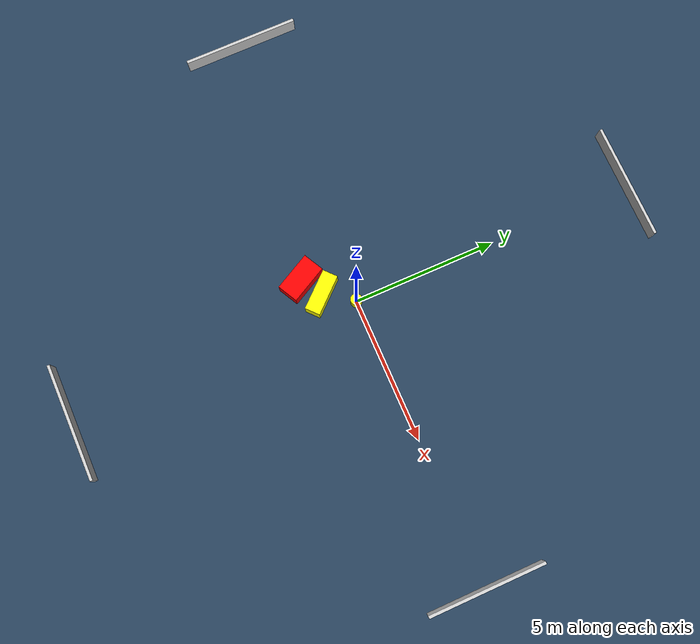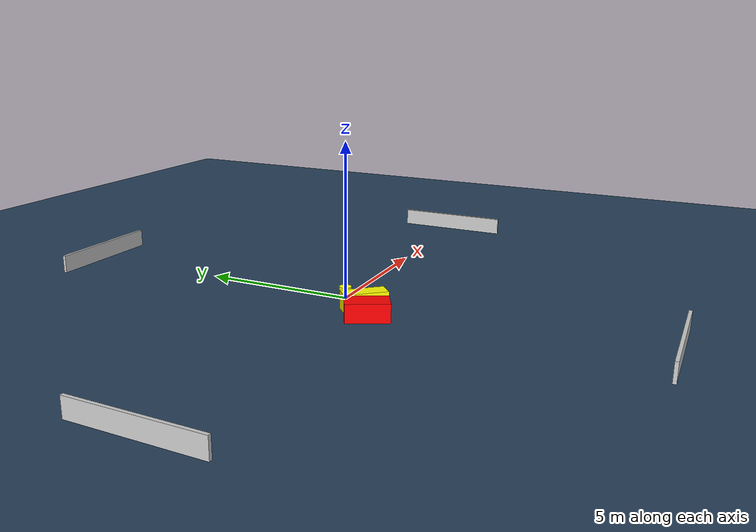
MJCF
<?xml version="1.0" ?>
<mujoco model="generated_environment">
  <option timestep="0.01" integrator="RK4" cone="elliptic"/>
  <default>
    <geom density="1"/>
  </default>
  <asset>
    <texture builtin="gradient" height="3072" name="skybox" rgb1="0.3 0.5 0.7" rgb2="0 0 0" type="skybox" width="512"/>
    <texture builtin="checker" height="300" name="groundplane" rgb1="0.2 0.3 0.4" rgb2="0.1 0.2 0.3" type="2d" width="300"/>
    <material name="groundplane" reflectance="0.2" texrepeat="5 5" texture="groundplane"/>
  </asset>
  <worldbody>
    <light dir="0 0 -1" directional="true" pos="0 0 1.5"/>
    <geom condim="3" friction="0.5 0.005 0.001" material="groundplane" name="floor" pos="0 0 0" size="0 0 0.05" type="plane"/>
    <body name="walls">
      <geom name="wall_1" condim="4" pos="-10.0 0.0 0.3" rgba="0.800000011920929 0.800000011920929 0.800000011920929 1.0" size="0.05 2.0 0.3" type="box"/>
      <geom name="wall_2" condim="4" pos="10.0 0.0 0.3" rgba="0.800000011920929 0.800000011920929 0.800000011920929 1.0" size="0.05 2.0 0.3" type="box"/>
      <geom name="wall_3" condim="4" pos="0.0 -10.0 0.3" rgba="0.800000011920929 0.800000011920929 0.800000011920929 1.0" size="2.0 0.05 0.3" type="box"/>
      <geom name="wall_4" condim="4" pos="0.0 10.0 0.3" rgba="0.800000011920929 0.800000011920929 0.800000011920929 1.0" size="2.0 0.05 0.3" type="box"/>
    </body>
    <body name="robot">
      <joint name="joint_x" type="slide" pos="0 0 0" axis="1 0 0"/>
      <joint name="joint_y" type="slide" pos="0 0 0" axis="0 1 0"/>
      <geom name="robot" type="cylinder" pos="0.0 0.0 0.2" size="0.2 0.2 0.0" mass="5.0" friction="1.0 0.005 0.0001" condim="4" rgba="1.0 1.0 0.0 1.0"/>
    </body>
    <body name="obstacle_1_movable">
      <geom name="obstacle_1_movable" condim="4" pos="-0.6464554455994505 -0.9718485987030039 0.3" euler="0 0 131.95884484002065" friction="0.0 0.005 0.001" rgba="1.0 1.0 0.0 1.0" size="0.7089584657060173 0.2648470282686529 0.3" type="box" mass="0.1"/>
      <joint type="free"/>
    </body>
    <body name="obstacle_2_static">
      <geom name="obstacle_2_static" condim="4" pos="-1.3702358473336145 -1.4058224808856803 0.3" euler="0 0 117.89072667480687" friction="0.0 0.005 0.001" rgba="1.0 0.0 0.0 1.0" size="0.6841328194256432 0.36867817084884064 0.3" type="box"/>
    </body>
  </worldbody>
  <actuator>
    <motor name="actuator_x" joint="joint_x" gear="1" ctrlrange="-1 1"/>
    <motor name="actuator_y" joint="joint_y" gear="1" ctrlrange="-1 1"/>
  </actuator>
</mujoco>
